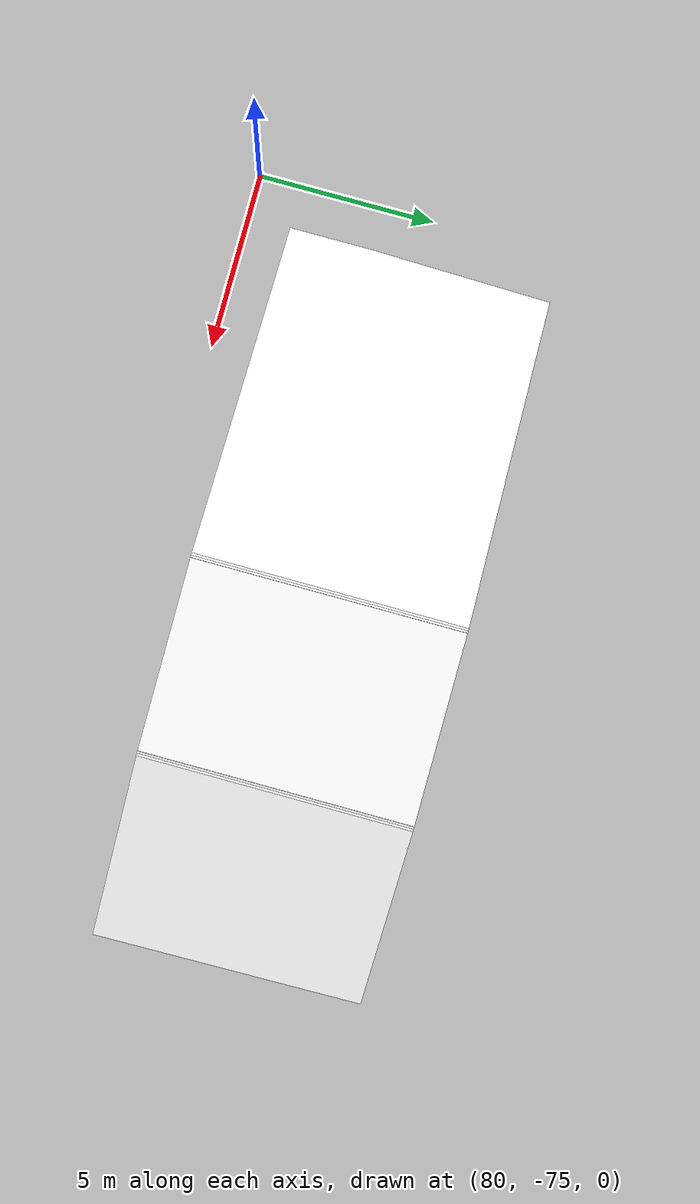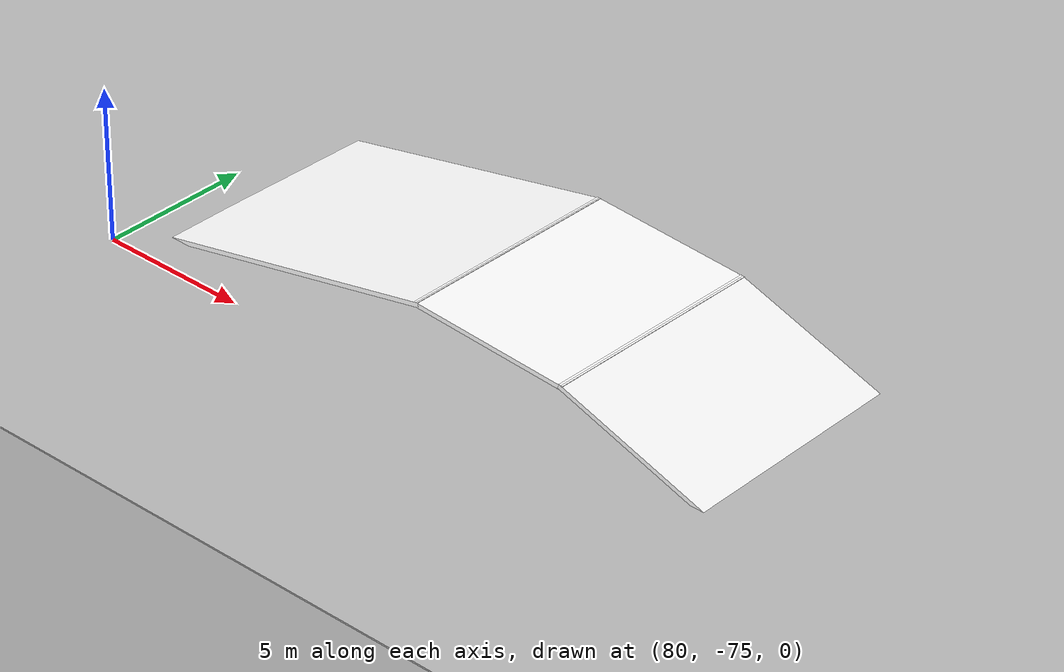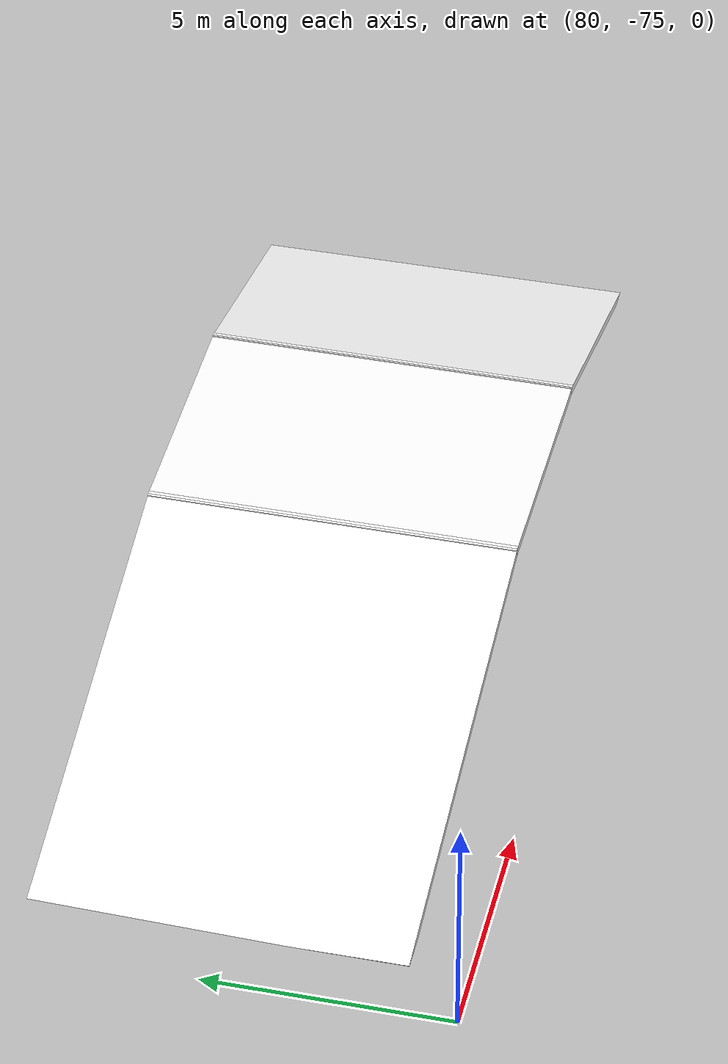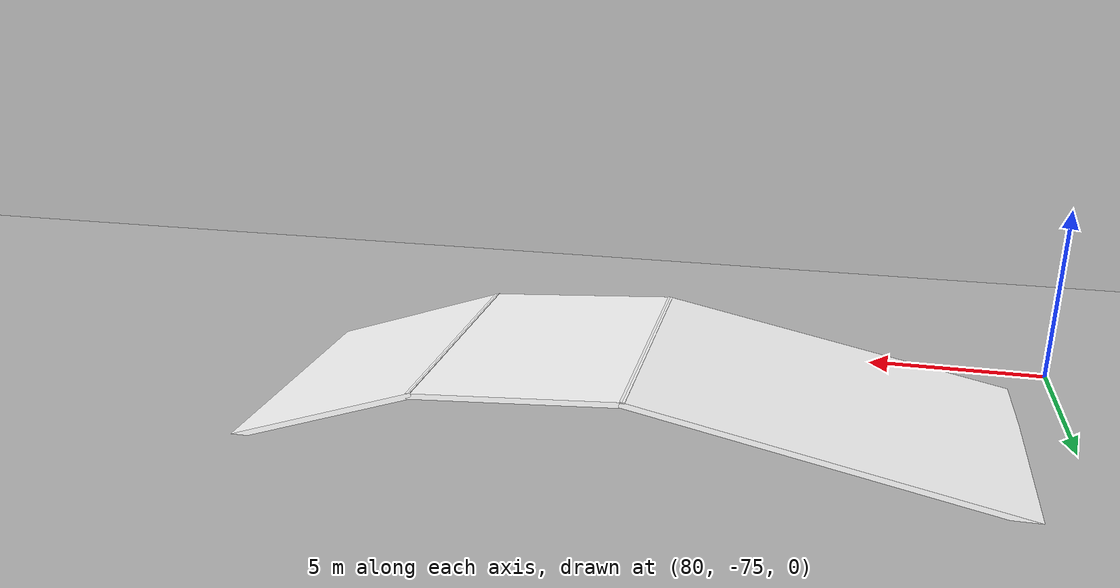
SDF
<sdf version="1.7">
 <world name="default">
  <model name="ground">
   <pose>75 -41.8 0 0 -0 1.57</pose>
   <static>1</static>
   <link name="ground">
    <collision name="ground_coll"><geometry><box><size>83.6 150 0.05</size></box></geometry></collision>
    <visual name="ground_vis">
     <geometry><box><size>83.6 150 0.05</size></box></geometry>
     <material><script><uri>./course.material</uri><name>course</name></script></material>
    </visual>
   </link>
  </model>
  <light name="sun" type="directional">
   <pose>0 0 10 0 -0 0</pose>
   <diffuse>0.8 0.8 0.8 1</diffuse>
   <specular>0.2 0.2 0.2 1</specular>
   <attenuation>
    <range>1000</range>
    <constant>0.9</constant>
    <linear>0.01</linear>
    <quadratic>0.001</quadratic>
   </attenuation>
   <direction>-0.5 0.1 -0.9</direction>
   <spot><inner_angle>0</inner_angle><outer_angle>0</outer_angle><falloff>0</falloff></spot>
  </light>
  <gravity>0 0 -9.8</gravity>
  <magnetic_field>6e-06 2.3e-05 -4.2e-05</magnetic_field>
  <atmosphere type="adiabatic"/>
  <physics type="ode">
   <max_step_size>0.001</max_step_size>
   <real_time_factor>1</real_time_factor>
   <real_time_update_rate>1000</real_time_update_rate>
  </physics>
  <scene><ambient>0.4 0.4 0.4 1</ambient><background>0.7 0.7 0.7 1</background><shadows>1</shadows></scene>
  <spherical_coordinates>
   <surface_model>EARTH_WGS84</surface_model>
   <latitude_deg>0</latitude_deg>
   <longitude_deg>0</longitude_deg>
   <elevation>0</elevation>
   <heading_deg>0</heading_deg>
  </spherical_coordinates>
  <model name="hill">
   <pose>93.6084 -66.2864 1.82588 1.56569 0.058838 -0.000301</pose>
   <link name="Wall_1">
    <collision name="Wall_1_Collision">
     <geometry><box><size>10 0.15 7.5</size></box></geometry>
     <pose>0 0 3.75 0 -0 0</pose>
    </collision>
    <visual name="Wall_1_Visual">
     <pose>0 0 3.75 0 -0 0</pose>
     <geometry><box><size>10 0.15 7.5</size></box></geometry>
     <material><script><uri>/hill.material</uri><name>hill</name></script><ambient>1 1 1 1</ambient></material>
     <meta><layer>0</layer></meta>
    </visual>
    <pose>-7.43227 -1.33204 0 0 -0 0.261773</pose>
   </link>
   <link name="Wall_2">
    <collision name="Wall_2_Collision">
     <geometry><box><size>5.5 0.15 7.5</size></box></geometry>
     <pose>0 0 3.75 0 -0 0</pose>
    </collision>
    <visual name="Wall_2_Visual">
     <pose>0 0 3.75 0 -0 0</pose>
     <geometry><box><size>5.5 0.15 7.5</size></box></geometry>
     <material><script><uri>./hill.material</uri><name>hill</name></script><ambient>1 1 1 1</ambient></material>
     <meta><layer>0</layer></meta>
    </visual>
    <pose>-0.000267 -0.057544 0 0 -0 0</pose>
   </link>
   <link name="Wall_3">
    <collision name="Wall_3_Collision">
     <geometry><box><size>10 0.15 7.5</size></box></geometry>
     <pose>0 0 3.75 0 -0 0</pose>
    </collision>
    <visual name="Wall_3_Visual">
     <pose>0 0 3.75 0 -0 0</pose>
     <geometry><box><size>10 0.15 7.5</size></box></geometry>
     <material><script><uri>./hill.material</uri><name>hill</name></script><ambient>1 1 1 1</ambient></material>
     <meta><layer>0</layer></meta>
    </visual>
    <pose>7.43223 -1.33204 0 0 -0 -0.261747</pose>
   </link>
   <static>1</static>
  </model>
 </world>
</sdf>
